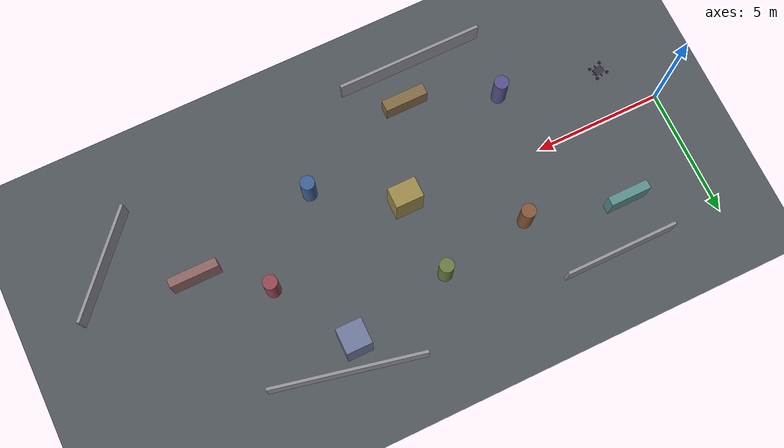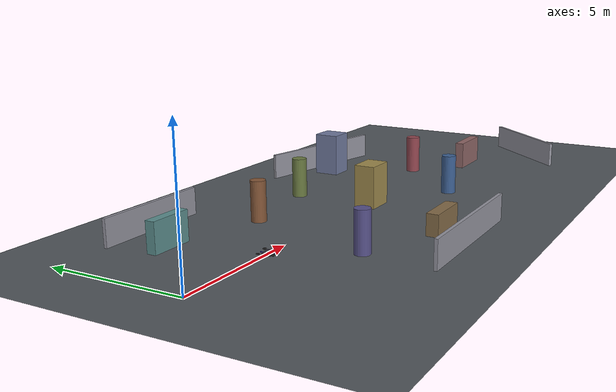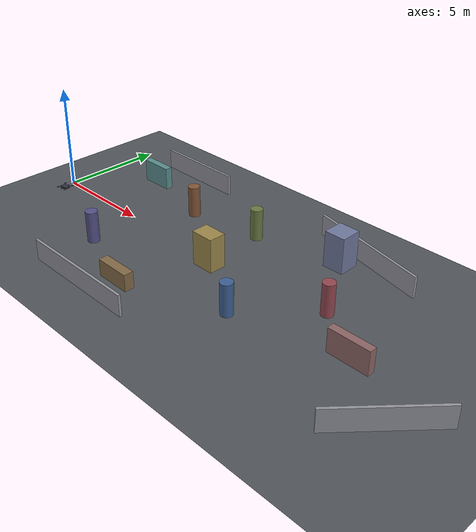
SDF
<sdf version="1.9">
 <world name="pedestrian_prototype">
  <gravity>0 0 -9.8</gravity>
  <plugin filename="ignition-gazebo-physics-system" name="ignition::gazebo::systems::Physics"/>
  <plugin filename="ignition-gazebo-user-commands-system" name="ignition::gazebo::systems::UserCommands"/>
  <plugin filename="ignition-gazebo-scene-broadcaster-system" name="ignition::gazebo::systems::SceneBroadcaster"/>
  <plugin filename="ignition-gazebo-sensors-system" name="ignition::gazebo::systems::Sensors">
   <render_engine>ogre2</render_engine>
  </plugin>
  <plugin filename="ignition-gazebo-imu-system" name="ignition::gazebo::systems::Imu"/>
  <plugin filename="libuav_pose_sync_system.so" name="depth_eval::UavPoseSyncSystem">
   <pose_topic>/uav_motion/pose_cmd</pose_topic>
   <model_name>uav_main</model_name>
  </plugin>
  <plugin filename="libpedestrian_pose_sync_system.so" name="depth_eval::PedestrianPoseSyncSystem">
   <pose_topic>/pedestrian_sim/agent_states</pose_topic>
   <model_name>commuter_1</model_name>
   <model_name>commuter_2</model_name>
   <model_name>shopper_1</model_name>
   <model_name>shopper_2</model_name>
   <model_name>visitor_1</model_name>
   <model_name>visitor_2</model_name>
   <model_name>staff_1</model_name>
   <model_name>staff_2</model_name>
  </plugin>
  <scene><ambient>0.6 0.6 0.6 1</ambient><background>0.7 0.85 1.0 1</background><grid>false</grid></scene>
  <light type="directional" name="sun">
   <pose>0 0 10 0 0 0</pose>
   <diffuse>0.85 0.85 0.85 1.0</diffuse>
   <specular>0.2 0.2 0.2 1.0</specular>
   <direction>-0.4 0.2 -0.9</direction>
  </light>
  <model name="ground_plane">
   <static>true</static>
   <link name="link">
    <collision name="collision">
     <geometry><plane><normal>0 0 1</normal><size>90.0 90.0</size></plane></geometry>
    </collision>
    <visual name="visual">
     <geometry><plane><normal>0 0 1</normal><size>90.0 90.0</size></plane></geometry>
     <material><ambient>0.28 0.3 0.32 1</ambient><diffuse>0.32 0.34 0.36 1</diffuse></material>
    </visual>
   </link>
  </model>
  <model name="pillar_a">
   <static>true</static>
   <pose>6.800 2.250 0.750 0 0 0</pose>
   <link name="link">
    <collision name="collision">
     <geometry><cylinder><radius>0.280</radius><length>1.500</length></cylinder></geometry>
    </collision>
    <visual name="visual">
     <geometry><cylinder><radius>0.280</radius><length>1.500</length></cylinder></geometry>
     <material><ambient>0.426 0.279 0.180 1</ambient><diffuse>0.520 0.340 0.220 1</diffuse></material>
    </visual>
   </link>
  </model>
  <model name="pillar_b">
   <static>true</static>
   <pose>13.600 -2.160 0.750 0 0 0</pose>
   <link name="link">
    <collision name="collision">
     <geometry><cylinder><radius>0.280</radius><length>1.500</length></cylinder></geometry>
    </collision>
    <visual name="visual">
     <geometry><cylinder><radius>0.280</radius><length>1.500</length></cylinder></geometry>
     <material><ambient>0.197 0.312 0.476 1</ambient><diffuse>0.240 0.380 0.580 1</diffuse></material>
    </visual>
   </link>
  </model>
  <model name="pillar_c">
   <static>true</static>
   <pose>10.370 2.790 0.750 0 0 0</pose>
   <link name="link">
    <collision name="collision">
     <geometry><cylinder><radius>0.280</radius><length>1.500</length></cylinder></geometry>
    </collision>
    <visual name="visual">
     <geometry><cylinder><radius>0.280</radius><length>1.500</length></cylinder></geometry>
     <material><ambient>0.344 0.394 0.213 1</ambient><diffuse>0.420 0.480 0.260 1</diffuse></material>
    </visual>
   </link>
  </model>
  <model name="pillar_d">
   <static>true</static>
   <pose>16.320 0.630 0.750 0 0 0</pose>
   <link name="link">
    <collision name="collision">
     <geometry><cylinder><radius>0.280</radius><length>1.500</length></cylinder></geometry>
    </collision>
    <visual name="visual">
     <geometry><cylinder><radius>0.280</radius><length>1.500</length></cylinder></geometry>
     <material><ambient>0.476 0.230 0.262 1</ambient><diffuse>0.580 0.280 0.320 1</diffuse></material>
    </visual>
   </link>
  </model>
  <model name="pillar_e">
   <static>true</static>
   <pose>5.440 -2.610 0.750 0 0 0</pose>
   <link name="link">
    <collision name="collision">
     <geometry><cylinder><radius>0.280</radius><length>1.500</length></cylinder></geometry>
    </collision>
    <visual name="visual">
     <geometry><cylinder><radius>0.280</radius><length>1.500</length></cylinder></geometry>
     <material><ambient>0.279 0.262 0.443 1</ambient><diffuse>0.340 0.320 0.540 1</diffuse></material>
    </visual>
   </link>
  </model>
  <model name="kiosk_a">
   <static>true</static>
   <pose>10.540 -0.270 0.800 0 0 0</pose>
   <link name="link">
    <collision name="collision"><geometry><box><size>1.100 0.800 1.600</size></box></geometry></collision>
    <visual name="visual">
     <geometry><box><size>1.100 0.800 1.600</size></box></geometry>
     <material><ambient>0.508 0.443 0.246 1</ambient><diffuse>0.620 0.540 0.300 1</diffuse></material>
    </visual>
   </link>
  </model>
  <model name="divider_a">
   <static>true</static>
   <pose>3.060 3.150 0.550 0 0 0</pose>
   <link name="link">
    <collision name="collision"><geometry><box><size>1.600 0.350 1.100</size></box></geometry></collision>
    <visual name="visual">
     <geometry><box><size>1.600 0.350 1.100</size></box></geometry>
     <material><ambient>0.295 0.459 0.459 1</ambient><diffuse>0.360 0.560 0.560 1</diffuse></material>
    </visual>
   </link>
  </model>
  <model name="divider_b">
   <static>true</static>
   <pose>18.700 -0.990 0.550 0 0 0</pose>
   <link name="link">
    <collision name="collision"><geometry><box><size>1.900 0.350 1.100</size></box></geometry></collision>
    <visual name="visual">
     <geometry><box><size>1.900 0.350 1.100</size></box></geometry>
     <material><ambient>0.459 0.328 0.328 1</ambient><diffuse>0.560 0.400 0.400 1</diffuse></material>
    </visual>
   </link>
  </model>
  <model name="kiosk_b">
   <static>true</static>
   <pose>14.450 3.690 0.850 0 0 0</pose>
   <link name="link">
    <collision name="collision"><geometry><box><size>1.000 1.000 1.700</size></box></geometry></collision>
    <visual name="visual">
     <geometry><box><size>1.000 1.000 1.700</size></box></geometry>
     <material><ambient>0.361 0.394 0.508 1</ambient><diffuse>0.440 0.480 0.620 1</diffuse></material>
    </visual>
   </link>
  </model>
  <model name="bench_a">
   <static>true</static>
   <pose>8.840 -3.870 0.400 0 0 0</pose>
   <link name="link">
    <collision name="collision"><geometry><box><size>1.700 0.450 0.800</size></box></geometry></collision>
    <visual name="visual">
     <geometry><box><size>1.700 0.450 0.800</size></box></geometry>
     <material><ambient>0.426 0.344 0.230 1</ambient><diffuse>0.520 0.420 0.280 1</diffuse></material>
    </visual>
   </link>
  </model>
  <model name="rail_a">
   <static>true</static>
   <pose>4.250 4.860 0.500 0 0 0.00000</pose>
   <link name="link">
    <collision name="collision"><geometry><box><size>4.420 0.120 1.000</size></box></geometry></collision>
    <visual name="visual">
     <geometry><box><size>4.420 0.120 1.000</size></box></geometry>
     <material><ambient>0.476 0.476 0.508 1</ambient><diffuse>0.580 0.580 0.620 1</diffuse></material>
    </visual>
   </link>
  </model>
  <model name="rail_b">
   <static>true</static>
   <pose>15.130 4.590 0.500 0 0 -0.21467</pose>
   <link name="link">
    <collision name="collision"><geometry><box><size>5.916 0.120 1.000</size></box></geometry></collision>
    <visual name="visual">
     <geometry><box><size>5.916 0.120 1.000</size></box></geometry>
     <material><ambient>0.476 0.476 0.508 1</ambient><diffuse>0.580 0.580 0.620 1</diffuse></material>
    </visual>
   </link>
  </model>
  <model name="rail_c">
   <static>true</static>
   <pose>21.590 -2.790 0.500 0 0 0.84090</pose>
   <link name="link">
    <collision name="collision"><geometry><box><size>4.589 0.120 1.000</size></box></geometry></collision>
    <visual name="visual">
     <geometry><box><size>4.589 0.120 1.000</size></box></geometry>
     <material><ambient>0.476 0.476 0.508 1</ambient><diffuse>0.580 0.580 0.620 1</diffuse></material>
    </visual>
   </link>
  </model>
  <model name="rail_d">
   <static>true</static>
   <pose>7.990 -5.220 0.500 0 0 0.00000</pose>
   <link name="link">
    <collision name="collision"><geometry><box><size>5.780 0.120 1.000</size></box></geometry></collision>
    <visual name="visual">
     <geometry><box><size>5.780 0.120 1.000</size></box></geometry>
     <material><ambient>0.476 0.476 0.508 1</ambient><diffuse>0.580 0.580 0.620 1</diffuse></material>
    </visual>
   </link>
  </model>
  <include>
   <uri>model://uav_d435i_platform</uri>
   <name>uav_main</name>
   <pose>1.800 -1.600 1.000 0 0 0.18000</pose>
  </include>
 </world>
</sdf>

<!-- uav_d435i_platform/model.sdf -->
<sdf version="1.9">
  <model name="uav_d435i_platform">
    <static>true</static>
    <self_collide>false</self_collide>

    <link name="base_link">
      <gravity>false</gravity>
      <velocity_decay>
        <linear>0.2</linear>
        <angular>0.2</angular>
      </velocity_decay>
      <inertial>
        <mass>1.4</mass>
        <inertia>
          <ixx>0.03</ixx>
          <ixy>0.0</ixy>
          <ixz>0.0</ixz>
          <iyy>0.03</iyy>
          <iyz>0.0</iyz>
          <izz>0.05</izz>
        </inertia>
      </inertial>

      <visual name="body_visual">
        <geometry>
          <box>
            <size>0.36 0.26 0.08</size>
          </box>
        </geometry>
        <material>
          <ambient>0.16 0.16 0.18 1</ambient>
          <diffuse>0.20 0.20 0.24 1</diffuse>
        </material>
      </visual>

      <visual name="front_camera_housing">
        <pose>0.19 0.0 -0.02 0 0 0</pose>
        <geometry>
          <box>
            <size>0.12 0.03 0.03</size>
          </box>
        </geometry>
        <material>
          <ambient>0.06 0.06 0.07 1</ambient>
          <diffuse>0.10 0.10 0.12 1</diffuse>
        </material>
      </visual>

      <visual name="arm_x">
        <geometry>
          <box>
            <size>0.52 0.03 0.02</size>
          </box>
        </geometry>
        <material>
          <ambient>0.42 0.14 0.14 1</ambient>
          <diffuse>0.56 0.18 0.18 1</diffuse>
        </material>
      </visual>

      <visual name="arm_y">
        <geometry>
          <box>
            <size>0.03 0.52 0.02</size>
          </box>
        </geometry>
        <material>
          <ambient>0.14 0.14 0.42 1</ambient>
          <diffuse>0.18 0.18 0.56 1</diffuse>
        </material>
      </visual>

      <visual name="rotor_fl">
        <pose>0.23 0.23 0.02 0 0 0</pose>
        <geometry>
          <cylinder>
            <radius>0.06</radius>
            <length>0.01</length>
          </cylinder>
        </geometry>
        <material>
          <ambient>0.08 0.08 0.08 1</ambient>
          <diffuse>0.12 0.12 0.12 1</diffuse>
        </material>
      </visual>

      <visual name="rotor_fr">
        <pose>0.23 -0.23 0.02 0 0 0</pose>
        <geometry>
          <cylinder>
            <radius>0.06</radius>
            <length>0.01</length>
          </cylinder>
        </geometry>
        <material>
          <ambient>0.08 0.08 0.08 1</ambient>
          <diffuse>0.12 0.12 0.12 1</diffuse>
        </material>
      </visual>

      <visual name="rotor_rl">
        <pose>-0.23 0.23 0.02 0 0 0</pose>
        <geometry>
          <cylinder>
            <radius>0.06</radius>
            <length>0.01</length>
          </cylinder>
        </geometry>
        <material>
          <ambient>0.08 0.08 0.08 1</ambient>
          <diffuse>0.12 0.12 0.12 1</diffuse>
        </material>
      </visual>

      <visual name="rotor_rr">
        <pose>-0.23 -0.23 0.02 0 0 0</pose>
        <geometry>
          <cylinder>
            <radius>0.06</radius>
            <length>0.01</length>
          </cylinder>
        </geometry>
        <material>
          <ambient>0.08 0.08 0.08 1</ambient>
          <diffuse>0.12 0.12 0.12 1</diffuse>
        </material>
      </visual>

      <sensor name="d435i_color" type="camera">
        <pose>0.30 0.0 0.05 0 0 0</pose>
        <camera>
          <horizontal_fov>1.211</horizontal_fov>
          <image>
            <width>640</width>
            <height>480</height>
            <format>R8G8B8</format>
          </image>
          <clip>
            <near>0.1</near>
            <far>10.0</far>
          </clip>
        </camera>
        <always_on>true</always_on>
        <update_rate>30</update_rate>
        <visualize>false</visualize>
        <topic>rgbd_camera_color</topic>
        <enable_metrics>false</enable_metrics>
      </sensor>

      <sensor name="d435i_depth" type="depth_camera">
        <pose>0.30 0.0 0.05 0 0 0</pose>
        <camera>
          <horizontal_fov>1.518</horizontal_fov>
          <image>
            <width>640</width>
            <height>480</height>
            <format>R_FLOAT32</format>
          </image>
          <clip>
            <near>0.1</near>
            <far>10.0</far>
          </clip>
          <depth_camera>
            <output>depths</output>
          </depth_camera>
          <noise>
            <type>gaussian</type>
            <mean>0.0</mean>
            <stddev>0.010</stddev>
          </noise>
        </camera>
        <always_on>true</always_on>
        <update_rate>30</update_rate>
        <visualize>false</visualize>
        <topic>rgbd_camera_depth</topic>
        <enable_metrics>false</enable_metrics>
      </sensor>

      <sensor name="d435i_imu" type="imu">
        <pose>0.02 0 0 0 0 0</pose>
        <always_on>true</always_on>
        <update_rate>200</update_rate>
        <visualize>false</visualize>
        <topic>camera/imu</topic>
        <enable_metrics>true</enable_metrics>
        <imu>
          <angular_velocity>
            <x>
              <noise type="gaussian">
                <mean>0.0</mean>
                <stddev>0.002</stddev>
              </noise>
            </x>
            <y>
              <noise type="gaussian">
                <mean>0.0</mean>
                <stddev>0.002</stddev>
              </noise>
            </y>
            <z>
              <noise type="gaussian">
                <mean>0.0</mean>
                <stddev>0.002</stddev>
              </noise>
            </z>
          </angular_velocity>
          <linear_acceleration>
            <x>
              <noise type="gaussian">
                <mean>0.0</mean>
                <stddev>0.02</stddev>
              </noise>
            </x>
            <y>
              <noise type="gaussian">
                <mean>0.0</mean>
                <stddev>0.02</stddev>
              </noise>
            </y>
            <z>
              <noise type="gaussian">
                <mean>0.0</mean>
                <stddev>0.02</stddev>
              </noise>
            </z>
          </linear_acceleration>
        </imu>
      </sensor>

      <sensor name="uav_lidar" type="gpu_lidar">
        <pose>0.18 0 0.06 0 0 0</pose>
        <always_on>true</always_on>
        <update_rate>10</update_rate>
        <visualize>false</visualize>
        <topic>uav_lidar/scan</topic>
        <ray>
          <scan>
            <horizontal>
              <samples>720</samples>
              <resolution>1</resolution>
              <min_angle>-3.1415926</min_angle>
              <max_angle>3.1415926</max_angle>
            </horizontal>
            <vertical>
              <samples>60</samples>
              <resolution>1</resolution>
              <min_angle>-0.122173</min_angle>
              <max_angle>0.907571</max_angle>
            </vertical>
          </scan>
          <range>
            <min>0.1</min>
            <max>70.0</max>
            <resolution>0.01</resolution>
          </range>
        </ray>
      </sensor>
    </link>
  </model>
</sdf>
